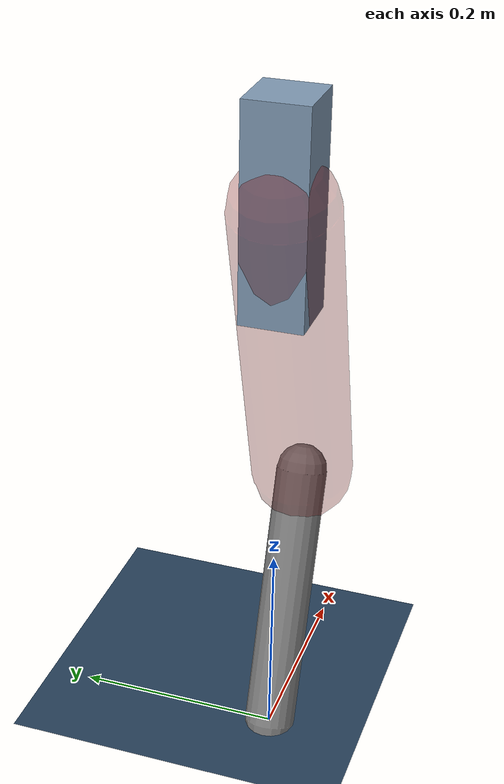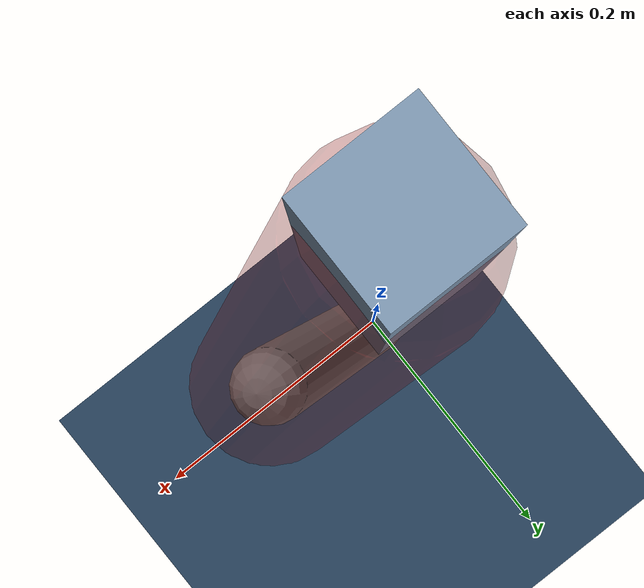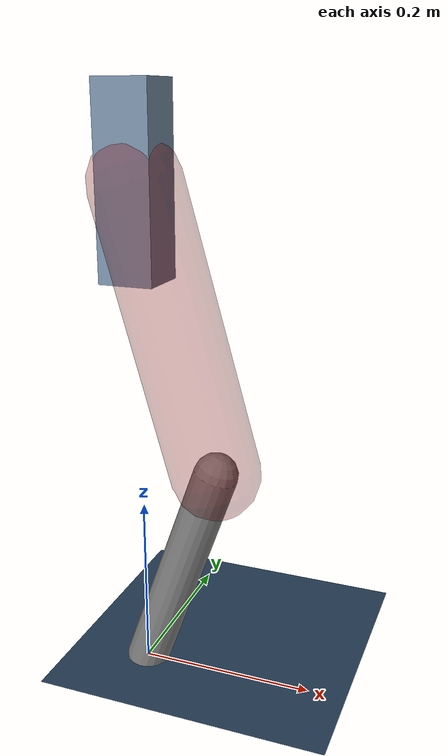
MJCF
<mujoco model="Hopper2D">
	<compiler inertiafromgeom="true" angle="radian" />
	<option timestep="0.001" integrator="implicit" cone="elliptic" solver="Newton" tolerance="1e-10" />

	<default>
		<geom contype="1" conaffinity="1" condim="3" friction="2 0.005 0.0001" solref="0.005 1" />
		<joint limited="true" damping="0.1" />
	</default>

	<asset>
		<texture name="skybox" type="skybox" builtin="gradient" rgb1=".4 .6 .8" rgb2="0 0 0" width="800" height="800" />
		<texture name="grid" type="2d" builtin="checker" rgb1=".1 .2 .3" rgb2=".2 .3 .4" width="300" height="300" mark="edge" markrgb=".2 .3 .4" />
		<material name="ground" texture="grid" texrepeat="1 1" texuniform="true" reflectance="0.1" />
		<material name="leg" rgba="0.5 0.6 0.7 1" />
	</asset>

	<worldbody>

		<geom name="floor" type="plane" size="5 5 0.25" material="ground" />

		<light directional="false" diffuse="0.8 0.8 0.8" specular="0.3 0.3 0.3" pos="0 0 2" dir="0 0 -1" />
		<light mode="targetbodycom" target="base" directional="false" diffuse="0.8 0.8 0.8" specular="0.3 0.3 0.3" pos="0 0 2" dir="0 0 -1" />

		<camera name="fixed" pos="0 -2 1" xyaxes="1 0 0 0 0 1" />
		<camera name="tracking" mode="trackcom" pos="0 -3 1" />

		<body name="root" pos="0 0 0.5572728123246684">
			<joint name="slide_x" type="slide" axis="1 0 0" range="-100 100" />
			<joint name="slide_z" type="slide" axis="0 0 1" range="0 10" />

			<body name="base" pos="0 0 0">
				<geom name="torso" type="box" size="0.03 0.03 0.1" mass="3.112" material="leg" />

				<body name="link1" pos="0 0 0" euler="0 1.2919103560976812 0">
					<joint type="hinge" axis="0 -1 0" pos="0 0 0" name="hinge1" limited="true" range="-3.14 3.14" stiffness="0" damping="0.1" />
					<geom name="thigh" type="capsule" fromto="0 0 0 0.31855318817268197 0 0" size="0.05" rgba="0.5 0 0 0.3" mass="1.0392936080662414" />

					<body name="link2" pos="0.31855318817268197 0 0" euler="0 0.6149686483760309 0">
						<joint type="hinge" axis="0 -1 0" pos="0 0 0" name="hinge2" limited="true" range="-3.14 3.14" stiffness="0" damping="0.1" />
						<geom name="shank" type="capsule" fromto="0 0 0 0.2659039714053535 0 0" size="0.025" mass="0.4556231771242828" />

					</body>
				</body>
			</body>
		</body>
	</worldbody>

	<actuator>
		<motor name="torque1" joint="hinge1" ctrlrange="-64.89839544411879 64.89839544411879" ctrllimited="true" gear="1" />
		<motor name="torque2" joint="hinge2" ctrlrange="-163.08252464877344 163.08252464877344" ctrllimited="true" gear="1" />
	</actuator>
</mujoco>
